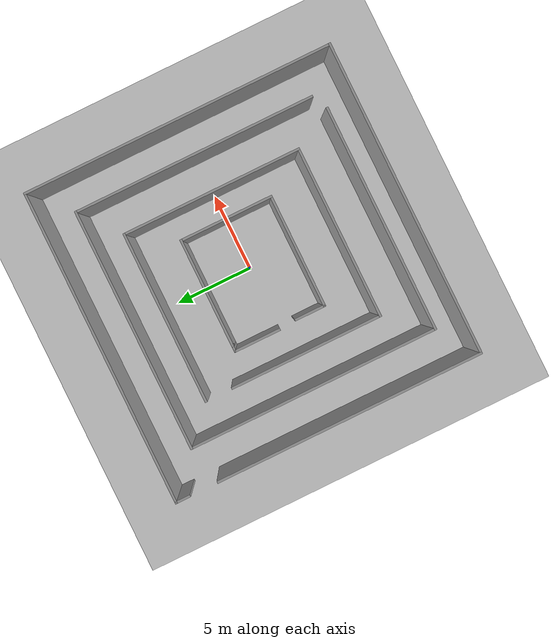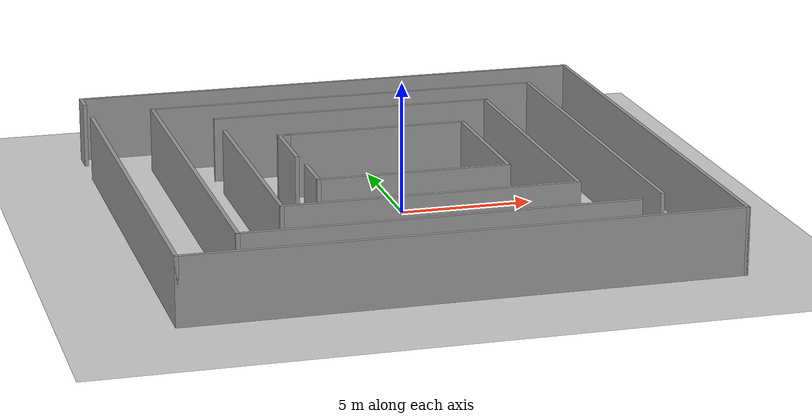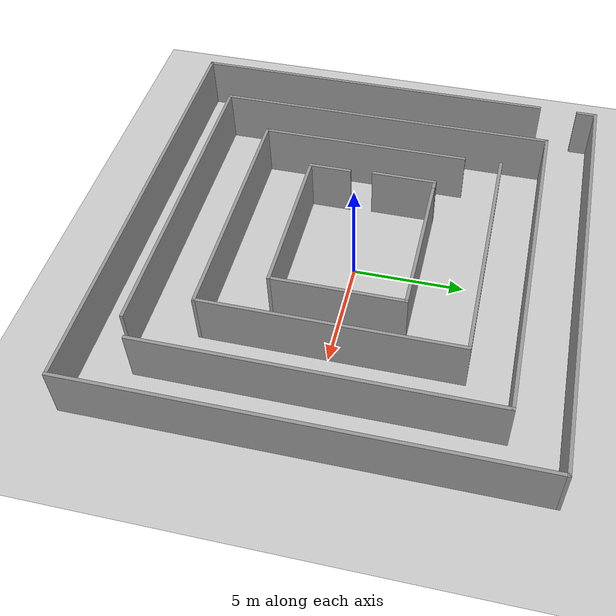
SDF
<sdf version="1.7">
 <world name="default">
  <light name="sun" type="directional">
   <pose>0 0 10 0 -0 0</pose>
   <diffuse>0.8 0.8 0.8 1</diffuse>
   <specular>0.2 0.2 0.2 1</specular>
   <attenuation>
    <range>1000</range>
    <constant>0.9</constant>
    <linear>0.01</linear>
    <quadratic>0.001</quadratic>
   </attenuation>
   <direction>-0.5 0.1 -0.9</direction>
   <spot><inner_angle>0</inner_angle><outer_angle>0</outer_angle><falloff>0</falloff></spot>
  </light>
  <model name="ground_plane">
   <static>1</static>
   <link name="link">
    <collision name="collision">
     <geometry><plane><normal>0 0 1</normal><size>100 100</size></plane></geometry>
     <surface><friction><ode><mu>100</mu><mu2>50</mu2></ode></friction></surface>
    </collision>
    <visual name="visual">
     <cast_shadows>0</cast_shadows>
     <geometry><plane><normal>0 0 1</normal><size>100 100</size></plane></geometry>
     <material>
      <script><uri>file://media/materials/scripts/gazebo.material</uri><name>Gazebo/Grey</name></script>
     </material>
    </visual>
   </link>
  </model>
  <gravity>0 0 -9.8</gravity>
  <magnetic_field>6e-06 2.3e-05 -4.2e-05</magnetic_field>
  <atmosphere type="adiabatic"/>
  <physics type="ode">
   <max_step_size>0.001</max_step_size>
   <real_time_factor>1</real_time_factor>
   <real_time_update_rate>1000</real_time_update_rate>
  </physics>
  <scene><ambient>0.4 0.4 0.4 1</ambient><background>0.7 0.7 0.7 1</background><shadows>1</shadows></scene>
  <spherical_coordinates>
   <surface_model>EARTH_WGS84</surface_model>
   <latitude_deg>0</latitude_deg>
   <longitude_deg>0</longitude_deg>
   <elevation>0</elevation>
   <heading_deg>0</heading_deg>
  </spherical_coordinates>
  <model name="Untitled">
   <pose>-0.371061 -0.023063 0 0 -0 0</pose>
   <link name="Wall_26">
    <collision name="Wall_26_Collision">
     <geometry><box><size>17.25 0.15 2.5</size></box></geometry>
     <pose>0 0 1.25 0 -0 0</pose>
    </collision>
    <visual name="Wall_26_Visual">
     <pose>0 0 1.25 0 -0 0</pose>
     <geometry><box><size>17.25 0.15 2.5</size></box></geometry>
     <material>
      <script><uri>file://media/materials/scripts/gazebo.material</uri><name>Gazebo/Grey</name></script>
      <ambient>1 1 1 1</ambient>
     </material>
     <meta><layer>0</layer></meta>
    </visual>
    <pose>-10.05 -1.375 0 0 -0 -1.5708</pose>
   </link>
   <link name="Wall_27">
    <collision name="Wall_27_Collision">
     <geometry><box><size>20.25 0.15 2.5</size></box></geometry>
     <pose>0 0 1.25 0 -0 0</pose>
    </collision>
    <visual name="Wall_27_Visual">
     <pose>0 0 1.25 0 -0 0</pose>
     <geometry><box><size>20.25 0.15 2.5</size></box></geometry>
     <material>
      <script><uri>file://media/materials/scripts/gazebo.material</uri><name>Gazebo/Grey</name></script>
      <ambient>1 1 1 1</ambient>
     </material>
     <meta><layer>0</layer></meta>
    </visual>
    <pose>0 -9.925 0 0 -0 0</pose>
   </link>
   <link name="Wall_28">
    <collision name="Wall_28_Collision">
     <geometry><box><size>20 0.15 2.5</size></box></geometry>
     <pose>0 0 1.25 0 -0 0</pose>
    </collision>
    <visual name="Wall_28_Visual">
     <pose>0 0 1.25 0 -0 0</pose>
     <geometry><box><size>20 0.15 2.5</size></box></geometry>
     <material>
      <script><uri>file://media/materials/scripts/gazebo.material</uri><name>Gazebo/Grey</name></script>
      <ambient>1 1 1 1</ambient>
     </material>
     <meta><layer>0</layer></meta>
    </visual>
    <pose>10.05 -0 0 0 -0 1.5708</pose>
   </link>
   <link name="Wall_29">
    <collision name="Wall_29_Collision">
     <geometry><box><size>20.25 0.15 2.5</size></box></geometry>
     <pose>0 0 1.25 0 -0 0</pose>
    </collision>
    <visual name="Wall_29_Visual">
     <pose>0 0 1.25 0 -0 0</pose>
     <geometry><box><size>20.25 0.15 2.5</size></box></geometry>
     <material>
      <script><uri>file://media/materials/scripts/gazebo.material</uri><name>Gazebo/Grey</name></script>
      <ambient>1 1 1 1</ambient>
     </material>
     <meta><layer>0</layer></meta>
    </visual>
    <pose>0 9.925 0 0 -0 3.14159</pose>
   </link>
   <link name="Wall_30">
    <collision name="Wall_30_Collision">
     <geometry><box><size>1 0.15 2.5</size></box></geometry>
     <pose>0 0 1.25 0 -0 0</pose>
    </collision>
    <visual name="Wall_30_Visual">
     <pose>0 0 1.25 0 -0 0</pose>
     <geometry><box><size>1 0.15 2.5</size></box></geometry>
     <material>
      <script><uri>file://media/materials/scripts/gazebo.material</uri><name>Gazebo/Grey</name></script>
      <ambient>1 1 1 1</ambient>
     </material>
     <meta><layer>0</layer></meta>
    </visual>
    <pose>-10.05 9.5 0 0 -0 -1.5708</pose>
   </link>
   <link name="Wall_32">
    <collision name="Wall_32_Collision">
     <geometry><box><size>15.5 0.15 2.5</size></box></geometry>
     <pose>0 0 1.25 0 -0 0</pose>
    </collision>
    <visual name="Wall_32_Visual">
     <pose>0 0 1.25 0 -0 0</pose>
     <geometry><box><size>15.5 0.15 2.5</size></box></geometry>
     <material>
      <script><uri>file://media/materials/scripts/gazebo.material</uri><name>Gazebo/Grey</name></script>
      <ambient>1 1 1 1</ambient>
     </material>
     <meta><layer>0</layer></meta>
    </visual>
    <pose>0.086115 7.72875 0 0 -0 0</pose>
   </link>
   <link name="Wall_33">
    <collision name="Wall_33_Collision">
     <geometry><box><size>15.5 0.15 2.5</size></box></geometry>
     <pose>0 0 1.25 0 -0 0</pose>
    </collision>
    <visual name="Wall_33_Visual">
     <pose>0 0 1.25 0 -0 0</pose>
     <geometry><box><size>15.5 0.15 2.5</size></box></geometry>
     <material>
      <script><uri>file://media/materials/scripts/gazebo.material</uri><name>Gazebo/Grey</name></script>
      <ambient>1 1 1 1</ambient>
     </material>
     <meta><layer>0</layer></meta>
    </visual>
    <pose>7.76112 0.053751 0 0 -0 -1.5708</pose>
   </link>
   <link name="Wall_35">
    <collision name="Wall_35_Collision">
     <geometry><box><size>14.5 0.15 2.5</size></box></geometry>
     <pose>0 0 1.25 0 -0 0</pose>
    </collision>
    <visual name="Wall_35_Visual">
     <pose>0 0 1.25 0 -0 0</pose>
     <geometry><box><size>14.5 0.15 2.5</size></box></geometry>
     <material>
      <script><uri>file://media/materials/scripts/gazebo.material</uri><name>Gazebo/Grey</name></script>
      <ambient>1 1 1 1</ambient>
     </material>
     <meta><layer>0</layer></meta>
    </visual>
    <pose>-0.42789 -8.14544 0 0 -0 3.14159</pose>
   </link>
   <link name="Wall_36">
    <collision name="Wall_36_Collision">
     <geometry><box><size>16 0.15 2.5</size></box></geometry>
     <pose>0 0 1.25 0 -0 0</pose>
    </collision>
    <visual name="Wall_36_Visual">
     <pose>0 0 1.25 0 -0 0</pose>
     <geometry><box><size>16 0.15 2.5</size></box></geometry>
     <material>
      <script><uri>file://media/materials/scripts/gazebo.material</uri><name>Gazebo/Grey</name></script>
      <ambient>1 1 1 1</ambient>
     </material>
     <meta><layer>0</layer></meta>
    </visual>
    <pose>-7.60289 -0.220441 0 0 -0 1.5708</pose>
   </link>
   <link name="Wall_38">
    <collision name="Wall_38_Collision">
     <geometry><box><size>11 0.15 2.5</size></box></geometry>
     <pose>0 0 1.25 0 -0 0</pose>
    </collision>
    <visual name="Wall_38_Visual">
     <pose>0 0 1.25 0 -0 0</pose>
     <geometry><box><size>11 0.15 2.5</size></box></geometry>
     <material>
      <script><uri>file://media/materials/scripts/gazebo.material</uri><name>Gazebo/Grey</name></script>
      <ambient>1 1 1 1</ambient>
     </material>
     <meta><layer>0</layer></meta>
    </visual>
    <pose>-0.071937 5.75986 0 0 -0 0</pose>
   </link>
   <link name="Wall_39">
    <collision name="Wall_39_Collision">
     <geometry><box><size>11.5 0.15 2.5</size></box></geometry>
     <pose>0 0 1.25 0 -0 0</pose>
    </collision>
    <visual name="Wall_39_Visual">
     <pose>0 0 1.25 0 -0 0</pose>
     <geometry><box><size>11.5 0.15 2.5</size></box></geometry>
     <material>
      <script><uri>file://media/materials/scripts/gazebo.material</uri><name>Gazebo/Grey</name></script>
      <ambient>1 1 1 1</ambient>
     </material>
     <meta><layer>0</layer></meta>
    </visual>
    <pose>5.35306 0.084859 0 0 -0 -1.5708</pose>
   </link>
   <link name="Wall_40">
    <collision name="Wall_40_Collision">
     <geometry><box><size>11 0.15 2.5</size></box></geometry>
     <pose>0 0 1.25 0 -0 0</pose>
    </collision>
    <visual name="Wall_40_Visual">
     <pose>0 0 1.25 0 -0 0</pose>
     <geometry><box><size>11 0.15 2.5</size></box></geometry>
     <material>
      <script><uri>file://media/materials/scripts/gazebo.material</uri><name>Gazebo/Grey</name></script>
      <ambient>1 1 1 1</ambient>
     </material>
     <meta><layer>0</layer></meta>
    </visual>
    <pose>-0.071937 -5.59014 0 0 -0 3.14159</pose>
   </link>
   <link name="Wall_41">
    <collision name="Wall_41_Collision">
     <geometry><box><size>9.75 0.15 2.5</size></box></geometry>
     <pose>0 0 1.25 0 -0 0</pose>
    </collision>
    <visual name="Wall_41_Visual">
     <pose>0 0 1.25 0 -0 0</pose>
     <geometry><box><size>9.75 0.15 2.5</size></box></geometry>
     <material>
      <script><uri>file://media/materials/scripts/gazebo.material</uri><name>Gazebo/Grey</name></script>
      <ambient>1 1 1 1</ambient>
     </material>
     <meta><layer>0</layer></meta>
    </visual>
    <pose>-5.49694 -0.790141 0 0 -0 1.5708</pose>
   </link>
   <link name="Wall_43">
    <collision name="Wall_43_Collision">
     <geometry><box><size>7 0.15 2.5</size></box></geometry>
     <pose>0 0 1.25 0 -0 0</pose>
    </collision>
    <visual name="Wall_43_Visual">
     <pose>0 0 1.25 0 -0 0</pose>
     <geometry><box><size>7 0.15 2.5</size></box></geometry>
     <material>
      <script><uri>file://media/materials/scripts/gazebo.material</uri><name>Gazebo/Grey</name></script>
      <ambient>1 1 1 1</ambient>
     </material>
     <meta><layer>0</layer></meta>
    </visual>
    <pose>0.143066 2.92958 0 0 -0 0</pose>
   </link>
   <link name="Wall_44">
    <collision name="Wall_44_Collision">
     <geometry><box><size>6 0.15 2.5</size></box></geometry>
     <pose>0 0 1.25 0 -0 0</pose>
    </collision>
    <visual name="Wall_44_Visual">
     <pose>0 0 1.25 0 -0 0</pose>
     <geometry><box><size>6 0.15 2.5</size></box></geometry>
     <material>
      <script><uri>file://media/materials/scripts/gazebo.material</uri><name>Gazebo/Grey</name></script>
      <ambient>1 1 1 1</ambient>
     </material>
     <meta><layer>0</layer></meta>
    </visual>
    <pose>3.56807 0.004576 0 0 -0 -1.5708</pose>
   </link>
   <link name="Wall_45">
    <collision name="Wall_45_Collision">
     <geometry><box><size>7.25 0.15 2.5</size></box></geometry>
     <pose>0 0 1.25 0 -0 0</pose>
    </collision>
    <visual name="Wall_45_Visual">
     <pose>0 0 1.25 0 -0 0</pose>
     <geometry><box><size>7.25 0.15 2.5</size></box></geometry>
     <material>
      <script><uri>file://media/materials/scripts/gazebo.material</uri><name>Gazebo/Grey</name></script>
      <ambient>1 1 1 1</ambient>
     </material>
     <meta><layer>0</layer></meta>
    </visual>
    <pose>0.018066 -2.92042 0 0 -0 3.14159</pose>
   </link>
   <link name="Wall_46">
    <collision name="Wall_46_Collision">
     <geometry><box><size>2 0.15 2.5</size></box></geometry>
     <pose>0 0 1.25 0 -0 0</pose>
    </collision>
    <visual name="Wall_46_Visual">
     <pose>0 0 1.25 0 -0 0</pose>
     <geometry><box><size>2 0.15 2.5</size></box></geometry>
     <material>
      <script><uri>file://media/materials/scripts/gazebo.material</uri><name>Gazebo/Grey</name></script>
      <ambient>1 1 1 1</ambient>
     </material>
     <meta><layer>0</layer></meta>
    </visual>
    <pose>-3.53193 -1.99542 0 0 -0 1.5708</pose>
   </link>
   <link name="Wall_48">
    <collision name="Wall_48_Collision">
     <geometry><box><size>0.5 0.15 2.5</size></box></geometry>
     <pose>0 0 1.25 0 -0 0</pose>
    </collision>
    <visual name="Wall_48_Visual">
     <pose>0 0 1.25 0 -0 0</pose>
     <geometry><box><size>0.5 0.15 2.5</size></box></geometry>
     <material>
      <script><uri>file://media/materials/scripts/gazebo.material</uri><name>Gazebo/Grey</name></script>
      <ambient>1 1 1 1</ambient>
     </material>
     <meta><layer>0</layer></meta>
    </visual>
    <pose>-3.45693 2.92958 0 0 -0 3.14159</pose>
   </link>
   <link name="Wall_49">
    <collision name="Wall_49_Collision">
     <geometry><box><size>3 0.15 2.5</size></box></geometry>
     <pose>0 0 1.25 0 -0 0</pose>
    </collision>
    <visual name="Wall_49_Visual">
     <pose>0 0 1.25 0 -0 0</pose>
     <geometry><box><size>3 0.15 2.5</size></box></geometry>
     <material>
      <script><uri>file://media/materials/scripts/gazebo.material</uri><name>Gazebo/Grey</name></script>
      <ambient>1 1 1 1</ambient>
     </material>
     <meta><layer>0</layer></meta>
    </visual>
    <pose>-3.63193 1.50458 0 0 -0 -1.5708</pose>
   </link>
   <static>1</static>
  </model>
 </world>
</sdf>
